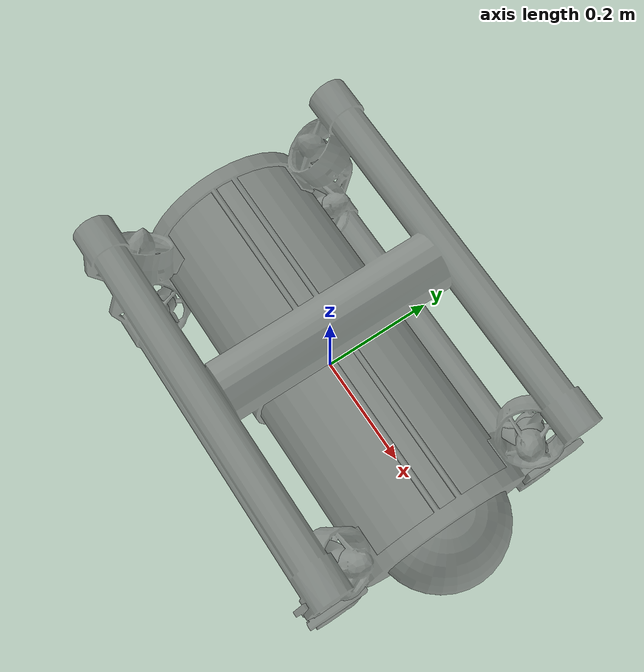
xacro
<?xml version="1.0" encoding="utf-8"?>
<robot name="mola_auv" xmlns:xacro="http://ros.org/wiki/xacro">

    <xacro:include filename="materials.xacro" />

    <link name="mola_auv_base_gt">
      <visual>
        <origin
          xyz="0 0 0"
          rpy="0 0 0" />
        <geometry>
          <mesh
            filename="package://mola_auv_sim/data/mola_auv/mesh/rviz/mola_auv_base_gt.obj" scale="1.0 1.0 1.0"/>
        </geometry>
        <material name="gray"/>
      </visual>
    </link>

    <link name="mola_auv_frame">
      <visual>
        <origin
          xyz="0 0 0"
          rpy="0 0 0" />
        <geometry>
          <mesh
            filename="package://mola_auv_sim/data/mola_auv/mesh/rviz/mola_auv_frame.stl" scale="1.0 1.0 1.0"/>
        </geometry>
        <material name="gray"/>
      </visual>
    </link>

    <link name="mola_auv_dome">
      <visual>
        <origin
          xyz="0 0 0"
          rpy="0 0 0" />
        <geometry>
          <mesh
            filename="package://mola_auv_sim/data/mola_auv/mesh/rviz/mola_auv_dome.stl" scale="1.0 1.0 1.0"/>
        </geometry>
        <material name="gray"/>
      </visual>
    </link>

    <link name="mola_auv_lightL">
      <visual>
        <origin
          xyz="0 0 0"
          rpy="0 0 0" />
        <geometry>
          <mesh
            filename="package://mola_auv_sim/data/mola_auv/mesh/rviz/mola_auv_lightL_gt.obj" scale="1.0 1.0 1.0"/>
        </geometry>
        <material name="gray"/>
      </visual>
    </link>

    <link name="mola_auv_lightR">
      <visual>
        <origin
          xyz="0 0 0"
          rpy="0 0 0" />
        <geometry>
          <mesh
            filename="package://mola_auv_sim/data/mola_auv/mesh/rviz/mola_auv_lightR_gt.obj" scale="1.0 1.0 1.0"/>
        </geometry>
        <material name="gray"/>
      </visual>
    </link>

    <!-- PROPELLER LFU -->
    <link name="mola_auv_propLFU">
      <visual>
        <origin
          xyz="0 0 0"
          rpy="0 0 0" />
        <geometry>
          <mesh
            filename="package://mola_auv_sim/data/mola_auv/mesh/rviz/ccw.stl" scale="1.17 1.17 1.17"/>
        </geometry>
        <material name="gray"/>
      </visual>
    </link>
    <joint name="base_propLFU" type="fixed">
      <origin rpy="0.0 -${45*pi/180} -${135*pi/180}" xyz="0.3 -0.182 -0.105"/>
      <parent link="mola_auv_base_gt" />
      <child link="mola_auv_propLFU" />
    </joint>

    <!-- PROPELLER LFD -->
    <link name="mola_auv_propLFD">
      <visual>
        <origin
          xyz="0 0 0"
          rpy="0 0 0" />
        <geometry>
          <mesh
            filename="package://mola_auv_sim/data/mola_auv/mesh/rviz/cw.stl" scale="1.17 1.17 1.17"/>
        </geometry>
        <material name="gray"/>
      </visual>
    </link>
    <joint name="base_propLFD" type="fixed">
      <origin rpy="0.0 ${45*pi/180} -${135*pi/180}" xyz="0.3 -0.182 0.105"/>
      <parent link="mola_auv_base_gt" />
      <child link="mola_auv_propLFD" />
    </joint>

   <!-- PROPELLER RFU -->
    <link name="mola_auv_propRFU">
      <visual>
        <origin
          xyz="0 0 0"
          rpy="0 0 0" />
        <geometry>
          <mesh
            filename="package://mola_auv_sim/data/mola_auv/mesh/rviz/cw.stl" scale="1.17 1.17 1.17"/>
        </geometry>
        <material name="gray"/>
      </visual>
    </link>
    <joint name="base_propRFU" type="fixed">
      <origin rpy="0.0 -${45*pi/180} ${135*pi/180}" xyz="0.3 0.182 -0.105"/>
      <parent link="mola_auv_base_gt" />
      <child link="mola_auv_propRFU" />
    </joint>

   <!-- PROPELLER RFD -->
    <link name="mola_auv_propRFD">
      <visual>
        <origin
          xyz="0 0 0"
          rpy="0 0 0" />
        <geometry>
          <mesh
            filename="package://mola_auv_sim/data/mola_auv/mesh/rviz/ccw.stl" scale="1.17 1.17 1.17"/>
        </geometry>
        <material name="gray"/>
      </visual>
    </link>
    <joint name="base_propRFD" type="fixed">
      <origin rpy="0.0 ${45*pi/180} ${135*pi/180}" xyz="0.3 0.182 0.105"/>
      <parent link="mola_auv_base_gt" />
      <child link="mola_auv_propRFD" />
    </joint>

    <!-- PROPELLER LBU -->
    <link name="mola_auv_propLBU">
      <visual>
        <origin
          xyz="0 0 0"
          rpy="0 0 0" />
        <geometry>
          <mesh
            filename="package://mola_auv_sim/data/mola_auv/mesh/rviz/ccw.stl" scale="1.17 1.17 1.17"/>
        </geometry>
        <material name="gray"/>
      </visual>
    </link>
    <joint name="base_propLBU" type="fixed">
      <origin rpy="0.0 ${45*pi/180} ${135*pi/180}" xyz="-0.3 -0.182 -0.105"/>
      <parent link="mola_auv_base_gt" />
      <child link="mola_auv_propLBU" />
    </joint>

   <!-- PROPELLER LBD -->
    <link name="mola_auv_propLBD">
      <visual>
        <origin
          xyz="0 0 0"
          rpy="0 0 0" />
        <geometry>
          <mesh
            filename="package://mola_auv_sim/data/mola_auv/mesh/rviz/cw.stl" scale="1.17 1.17 1.17"/>
        </geometry>
        <material name="gray"/>
      </visual>
    </link>
    <joint name="base_propLBD" type="fixed">
      <origin rpy="0.0 -${45*pi/180} ${135*pi/180}" xyz="-0.3 -0.182 0.105"/>
      <parent link="mola_auv_base_gt" />
      <child link="mola_auv_propLBD" />
    </joint>

    <!-- PROPELLER RBU -->
    <link name="mola_auv_propRBU">
      <visual>
        <origin
          xyz="0 0 0"
          rpy="0 0 0" />
        <geometry>
          <mesh
            filename="package://mola_auv_sim/data/mola_auv/mesh/rviz/cw.stl" scale="1.17 1.17 1.17"/>
        </geometry>
        <material name="gray"/>
      </visual>
    </link>
    <joint name="base_propRBU" type="fixed">
      <origin rpy="0.0 ${45*pi/180} -${135*pi/180}" xyz="-0.3 0.182 -0.105"/>
      <parent link="mola_auv_base_gt" />
      <child link="mola_auv_propRBU" />
    </joint>

    <!-- PROPELLER RBD -->
    <link name="mola_auv_propRBD">
      <visual>
        <origin
          xyz="0 0 0"
          rpy="0 0 0" />
        <geometry>
          <mesh
            filename="package://mola_auv_sim/data/mola_auv/mesh/rviz/ccw.stl" scale="1.17 1.17 1.17"/>
        </geometry>
        <material name="gray"/>
      </visual>
    </link>
    <joint name="base_propRBD" type="fixed">
      <origin rpy="0.0 -${45*pi/180} -${135*pi/180}" xyz="-0.3 0.182 0.105"/>
      <parent link="mola_auv_base_gt" />
      <child link="mola_auv_propRBD" />
    </joint>

    <joint name="base_frame" type="fixed">
      <origin rpy="0 0 0" xyz="0 0 0"/>
      <parent link="mola_auv_base_gt" />
      <child link="mola_auv_frame" />
    </joint>
    <joint name="base_dome" type="fixed">
      <origin rpy="0 0 0" xyz="0 0 0"/>
      <parent link="mola_auv_base_gt" />
      <child link="mola_auv_dome" />
    </joint>

		<joint name="base_lightL" type="revolute">
			<parent link="mola_auv_base_gt"/>
			<child link="mola_auv_lightL"/>
			<origin xyz="0.32 -0.225 -0.19" rpy="0.0 0.0 0.0"/>
			<axis xyz="1.0 0.0 0.0"/>
			<limit lower="0.0" upper="${pi/2}" effort="1.0" velocity="1.0"/>
		</joint>
		<joint name="base_lightR" type="revolute">
			<parent link="mola_auv_base_gt"/>
			<child link="mola_auv_lightR"/>
			<origin xyz="0.32 0.225 -0.19" rpy="0.0 0.0 0.0"/>
			<axis xyz="1.0 0.0 0.0"/>
			<limit lower="-${pi/2}" upper="0.0" effort="1.0" velocity="1.0"/>
		</joint>

</robot>

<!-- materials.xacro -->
<robot xmlns:xacro="http://ros.org/wiki/xacro">
    <material name="blue">
        <color rgba="0 0.3 0.8 1"/>
    </material>

    <material name="black">
        <color rgba="0 0 0 1"/>
    </material>

    <material name="blue_propeller">
        <color rgba="0 0.1 0.85 1"/>
    </material>

    <material name="glass">
        <color rgba="1.0 1.0 1.0 0.5"/>
    </material>

    <material name="yellow">
        <color rgba="0.898 0.769 0.145 1.0"/>
    </material>

    <material name="gray">
        <color rgba="0.5 0.5 0.5 0.7"/>
    </material>

    <material name="base">
        <texture filename="package://mola_auv_sim/data/mola_auv/texture/base.png"/>
    </material>
    <material name="light">
        <texture filename="package://mola_auv_sim/data/mola_auv/texture/lightL.png"/>
    </material>
</robot>
